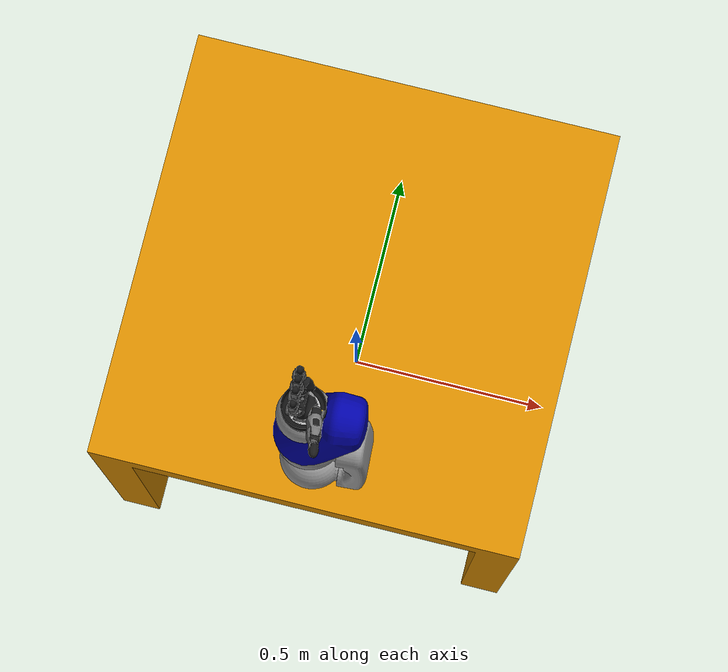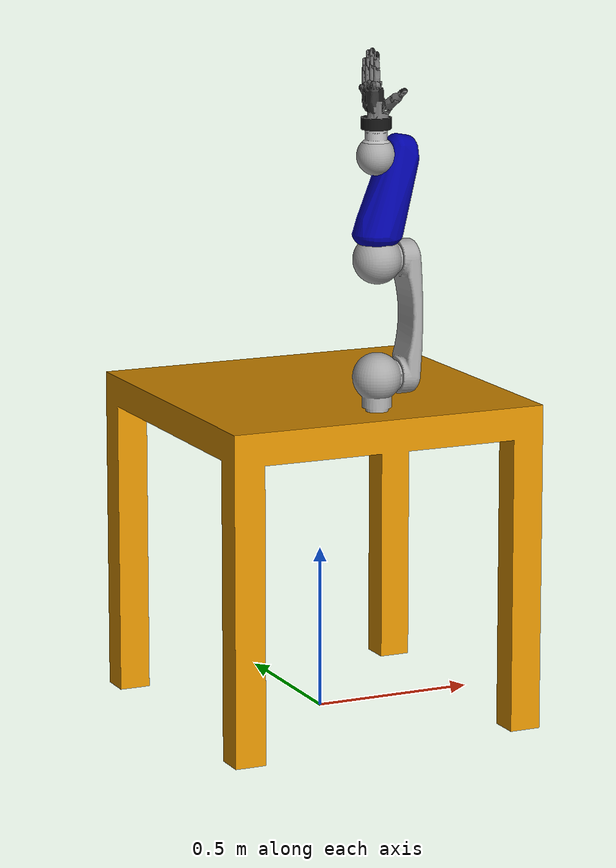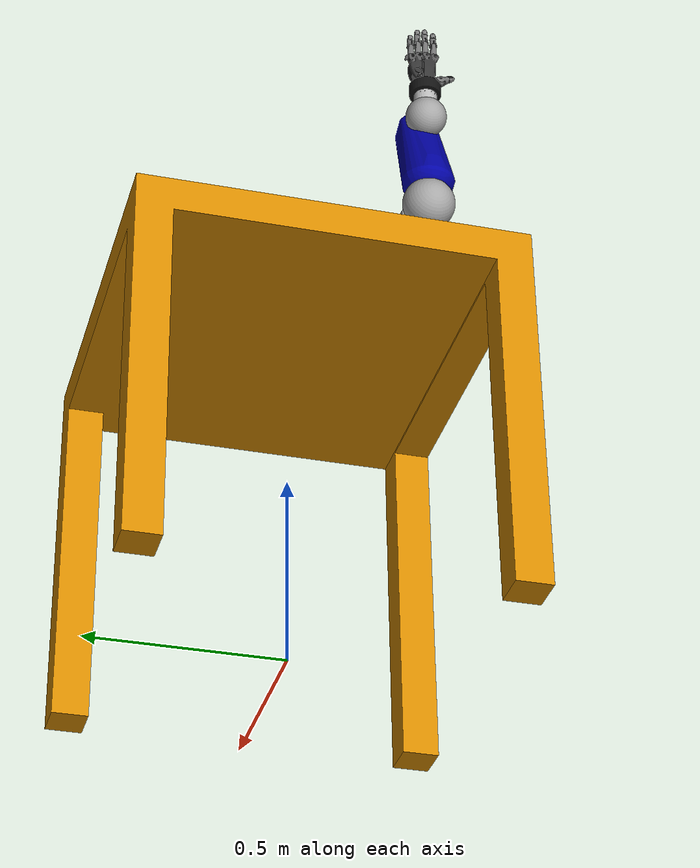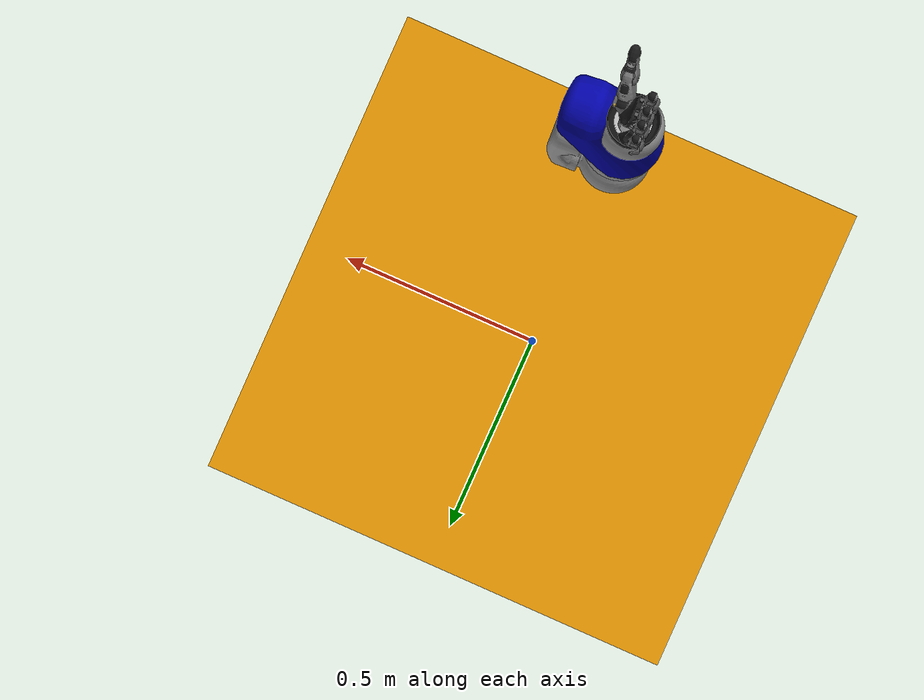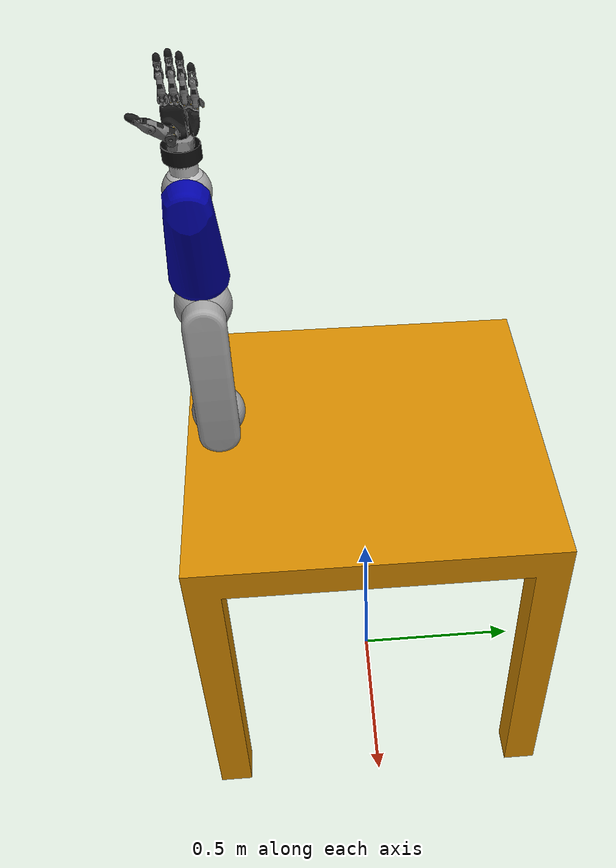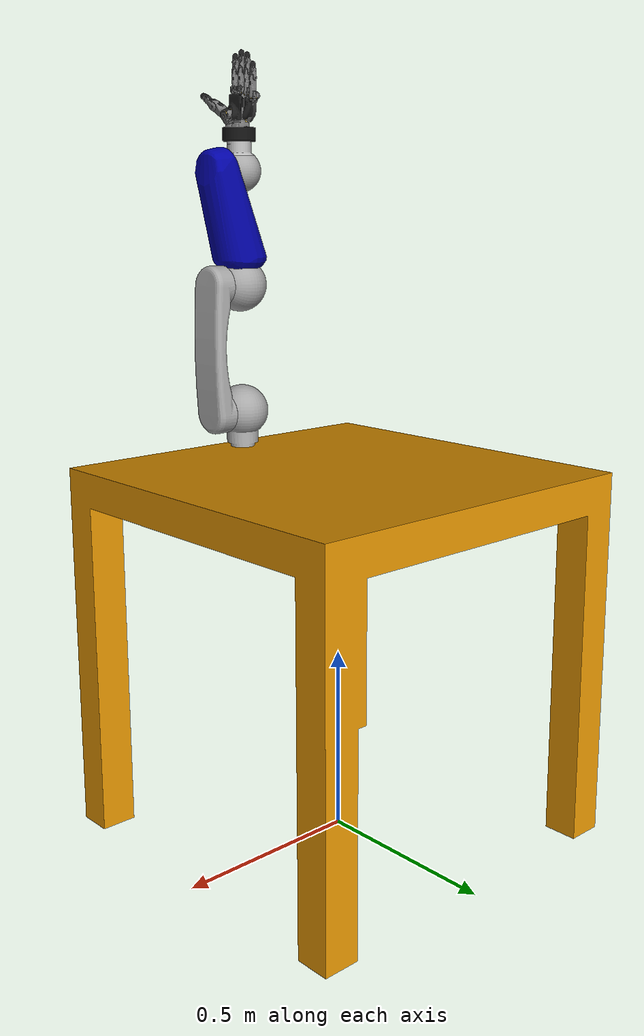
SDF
<?xml version="1.0" ?>
<sdf version="1.5">
	<model name="Arm robot">
		<link name="base_link">
			<pose>0.0 0.0 0.0 0.0 -0.0 0.0</pose>
			<inertial>
				<mass>1000.0</mass>
				<pose>0 0 0 0 0 0</pose>
				<inertia>
					<ixx>100.0</ixx>
					<ixy>0.0</ixy>
					<ixz>0.0</ixz>
					<iyy>100.0</iyy>
					<iyz>0.0</iyz>
					<izz>100.0</izz>
				</inertia>
			</inertial>
			<collision name="COL_base_link_collision">
				<pose>0.0 0.0 0.5 0.0 -0.0 0.0</pose>
				<geometry>
					<mesh>
						<uri>model://Arm_robot/meshes/collisions/COL_base_link_collision.dae</uri>
					</mesh>
				</geometry>
			</collision>
			<collision name="COL_base_link_collision_1">
				<pose>0.0 0.0 0.5 0.0 -0.0 0.0</pose>
				<geometry>
					<mesh>
						<uri>model://Arm_robot/meshes/collisions/COL_base_link_collision_1.dae</uri>
					</mesh>
				</geometry>
			</collision>
			<collision name="COL_base_link_collision_2">
				<pose>0.0 0.0 0.5 0.0 -0.0 0.0</pose>
				<geometry>
					<mesh>
						<uri>model://Arm_robot/meshes/collisions/COL_base_link_collision_2.dae</uri>
					</mesh>
				</geometry>
			</collision>
			<visual name="VIS_base_link_visual">
				<pose>0.0 0.0 0.5 0.0 -0.0 0.0</pose>
				<geometry>
					<mesh>
						<uri>model://Arm_robot/meshes/visual/VIS_base_link_visual.dae</uri>
					</mesh>
				</geometry>
			</visual>
		</link>
		<link name="hollie_real_left_arm">
			<pose>0.0 -0.40000000596 1.0 0.0 -0.0 1.623156189918518</pose>
			<inertial>
				<mass>0.29363998770713806</mass>
				<pose>0 0 0 0 0 0</pose>
				<inertia>
					<ixx>0.009999999776482582</ixx>
					<ixy>0.0</ixy>
					<ixz>0.0</ixz>
					<iyy>0.009999999776482582</iyy>
					<iyz>0.0</iyz>
					<izz>0.009999999776482582</izz>
				</inertia>
			</inertial>
		</link>
		<link name="hollie_real_000">
			<pose>3.46469219811e-18 -0.40000000596 1.1099999994 0.0 -0.0 1.623156189918518</pose>
			<inertial>
				<mass>0.29363998770713806</mass>
				<pose>0 0 0 0 0 0</pose>
				<inertia>
					<ixx>0.009999999776482582</ixx>
					<ixy>0.0</ixy>
					<ixz>0.0</ixz>
					<iyy>0.009999999776482582</iyy>
					<iyz>0.0</iyz>
					<izz>0.009999999776482582</izz>
				</inertia>
			</inertial>
			<collision name="COL_hollie_real.000_collision">
				<pose>3.502620060658046e-08 9.967757108597652e-08 1.3113021850585938e-06 0.0 -0.0 -1.2665987014770508e-07</pose>
				<geometry>
					<mesh>
						<uri>model://Arm_robot/meshes/collisions/COL_hollie_real_000_collision.dae</uri>
					</mesh>
				</geometry>
			</collision>
			<visual name="VIS_hollie_real.000_visual">
				<pose>3.502620060658046e-08 9.967757108597652e-08 1.3113021850585938e-06 -2.1012502315898018e-07 1.1580814529565941e-08 -1.2665987014770508e-07</pose>
				<geometry>
					<mesh>
						<uri>model://Arm_robot/meshes/visual/VIS_hollie_real_000_visual.dae</uri>
					</mesh>
				</geometry>
			</visual>
		</link>
		<link name="hollie_real_001">
			<pose>6.92938439622e-18 -0.40000000596 1.1099999994 1.5707963705062866 -0.0 1.623156189918518</pose>
			<inertial>
				<mass>1.683109998703003</mass>
				<pose>0 0 0 0 0 0</pose>
				<inertia>
					<ixx>0.029999999329447746</ixx>
					<ixy>0.0</ixy>
					<ixz>0.0</ixz>
					<iyy>0.029999999329447746</iyy>
					<iyz>0.0</iyz>
					<izz>0.029999999329447746</izz>
				</inertia>
			</inertial>
			<collision name="COL_hollie_real.001_collision">
				<pose>4.440184220300125e-09 1.5512088111790945e-06 -3.959155669974734e-09 -7.549789415861596e-08 -7.450580596923828e-08 -3.42975354783448e-08</pose>
				<geometry>
					<mesh>
						<uri>model://Arm_robot/meshes/collisions/COL_hollie_real_001_collision.dae</uri>
					</mesh>
				</geometry>
			</collision>
			<visual name="VIS_hollie_real.001_visual">
				<pose>4.440184220300125e-09 1.5512088111790945e-06 -3.959155669974734e-09 -7.549789415861596e-08 4.842877388000488e-08 5.42986633433884e-08</pose>
				<geometry>
					<mesh>
						<uri>model://Arm_robot/meshes/visual/VIS_hollie_real_001_visual.dae</uri>
					</mesh>
				</geometry>
			</visual>
		</link>
		<link name="hollie_real_002">
			<pose>-1.26858188779e-06 -0.400000072444 1.45999999344 1.5707961956607377 -8.742278039484667e-08 -1.5184365510940514</pose>
			<inertial>
				<mass>2.0999999046325684</mass>
				<pose>0 0 0 0 0 0</pose>
				<inertia>
					<ixx>0.029999999329447746</ixx>
					<ixy>0.0</ixy>
					<ixz>0.0</ixz>
					<iyy>0.029999999329447746</iyy>
					<iyz>0.0</iyz>
					<izz>0.029999999329447746</izz>
				</inertia>
			</inertial>
			<collision name="COL_hollie_real.002_collision">
				<pose>-1.6313825312863628e-07 9.193994401357486e-07 1.2008214866909839e-08 1.750278215695289e-07 -3.688037679694389e-07 3.710286122782236e-08</pose>
				<geometry>
					<mesh>
						<uri>model://Arm_robot/meshes/collisions/COL_hollie_real_002_collision.dae</uri>
					</mesh>
				</geometry>
			</collision>
			<visual name="VIS_hollie_real.002_visual">
				<pose>-1.6313825312863628e-07 9.193994401357486e-07 1.2008214866909839e-08 5.581852846603397e-08 5.885958671569824e-07 -1.7066166435597552e-07</pose>
				<geometry>
					<mesh>
						<uri>model://Arm_robot/meshes/visual/VIS_hollie_real_002_visual.dae</uri>
					</mesh>
				</geometry>
			</visual>
		</link>
		<link name="hollie_real_003">
			<pose>-1.26858188779e-06 -0.400000072444 1.45999999344 1.7484554892810745e-07 2.3841857949268303e-07 1.6231561024957617</pose>
			<inertial>
				<mass>1.683109998703003</mass>
				<pose>0 0 0 0 0 0</pose>
				<inertia>
					<ixx>0.10000000149011612</ixx>
					<ixy>0.0</ixy>
					<ixz>0.0</ixz>
					<iyy>0.10000000149011612</iyy>
					<iyz>0.0</iyz>
					<izz>0.10000000149011612</izz>
				</inertia>
			</inertial>
			<collision name="COL_hollie_real.003_collision">
				<pose>2.965595413684241e-08 -2.801496350457455e-07 -5.2729024702102834e-08 6.974032373818773e-08 3.080916854969473e-09 -4.0978225257504164e-08</pose>
				<geometry>
					<mesh>
						<uri>model://Arm_robot/meshes/collisions/COL_hollie_real_003_collision.dae</uri>
					</mesh>
				</geometry>
			</collision>
			<visual name="VIS_hollie_real.003_visual">
				<pose>2.965595413684241e-08 -2.801496350457455e-07 -5.2729024702102834e-08 2.2452533698924526e-07 6.1754015234782855e-09 -4.0978225257504164e-08</pose>
				<geometry>
					<mesh>
						<uri>model://Arm_robot/meshes/visual/VIS_hollie_real_003_visual.dae</uri>
					</mesh>
				</geometry>
			</visual>
		</link>
		<link name="hollie_real_004">
			<pose>-0.0052512203928 -0.400269976584 1.76500000151 1.5707961956607017 -2.384185530917369e-07 -1.5184364000982324</pose>
			<inertial>
				<mass>0.8069999814033508</mass>
				<pose>0 0 0 0 0 0</pose>
				<inertia>
					<ixx>0.029999999329447746</ixx>
					<ixy>0.0</ixy>
					<ixz>0.0</ixz>
					<iyy>0.029999999329447746</iyy>
					<iyz>0.0</iyz>
					<izz>0.029999999329447746</izz>
				</inertia>
			</inertial>
			<collision name="COL_hollie_real.004_collision">
				<pose>-1.6731675600567542e-07 6.537723038491094e-07 -6.429149834730197e-08 1.750278357803836e-07 -2.533197687171196e-07 9.097730568896623e-09</pose>
				<geometry>
					<mesh>
						<uri>model://Arm_robot/meshes/collisions/COL_hollie_real_004_collision.dae</uri>
					</mesh>
				</geometry>
			</collision>
			<visual name="VIS_hollie_real.004_visual">
				<pose>-1.6731675600567542e-07 6.537723038491094e-07 -6.429149834730197e-08 1.4863301203149604e-06 -1.7993152141571045e-06 -1.6434250937891193e-07</pose>
				<geometry>
					<mesh>
						<uri>model://Arm_robot/meshes/visual/VIS_hollie_real_004_visual.dae</uri>
					</mesh>
				</geometry>
			</visual>
		</link>
		<link name="hollie_real_005">
			<pose>-0.0052512203928 -0.400269976584 1.76500000151 -1.7484558489933022e-07 -2.384185530917369e-07 -1.5184364000982324</pose>
			<inertial>
				<mass>0.8190000057220459</mass>
				<pose>0 0 0 0 0 0</pose>
				<inertia>
					<ixx>0.009999999776482582</ixx>
					<ixy>0.0</ixy>
					<ixz>0.0</ixz>
					<iyy>0.009999999776482582</iyy>
					<iyz>0.0</iyz>
					<izz>0.009999999776482582</izz>
				</inertia>
			</inertial>
			<collision name="COL_hollie_real.005_collision">
				<pose>-6.61928254430677e-08 3.525356930822454e-07 1.4763578519705334e-06 2.4868999139735296e-14 -2.398082072003517e-14 -1.7508870087112882e-07</pose>
				<geometry>
					<mesh>
						<uri>model://Arm_robot/meshes/collisions/COL_hollie_real_005_collision.dae</uri>
					</mesh>
				</geometry>
			</collision>
			<visual name="VIS_hollie_real.005_visual">
				<pose>-6.61928254430677e-08 3.525356930822454e-07 1.4763578519705334e-06 1.2880501287781954e-07 -3.815348037505828e-11 4.2468306560294877e-07</pose>
				<geometry>
					<mesh>
						<uri>model://Arm_robot/meshes/visual/VIS_hollie_real_005_visual.dae</uri>
					</mesh>
				</geometry>
			</visual>
		</link>
		<link name="hollie_real_006">
			<pose>-0.00525120417999 -0.40026995186 1.865000003 -1.7484558489933022e-07 -2.384185530917369e-07 -1.5184364000982324</pose>
			<inertial>
				<mass>9.999999747378752e-06</mass>
				<pose>0 0 0 0 0 0</pose>
				<inertia>
					<ixx>0.009999999776482582</ixx>
					<ixy>0.0</ixy>
					<ixz>0.0</ixz>
					<iyy>0.009999999776482582</iyy>
					<iyz>0.0</iyz>
					<izz>0.009999999776482582</izz>
				</inertia>
			</inertial>
			<collision name="COL_hollie_real.006_collision">
				<pose>-1.6401645552832633e-07 9.84966504802287e-07 -0.03199799358844757 -3.375078333673655e-14 -8.437695664777548e-14 -1.7881400538044545e-07</pose>
				<geometry>
					<mesh>
						<uri>model://Arm_robot/meshes/collisions/COL_hollie_real_006_collision.dae</uri>
					</mesh>
				</geometry>
			</collision>
			<visual name="VIS_hollie_real.006_visual">
				<pose>-1.6401645552832633e-07 9.84966504802287e-07 -0.03199799358844757 -5.191037999452419e-08 -7.896225895365205e-10 6.33298924412884e-08</pose>
				<geometry>
					<mesh>
						<uri>model://Arm_robot/meshes/visual/VIS_hollie_real_006_visual.dae</uri>
					</mesh>
				</geometry>
			</visual>
		</link>
		<link name="hollie_real_007">
			<pose>-0.018361201363 -0.400959999037 1.8650000053 -1.7484558489933022e-07 -2.384185530917369e-07 -1.5184364000982324</pose>
			<inertial>
				<mass>9.999999747378752e-06</mass>
				<pose>0 0 0 0 0 0</pose>
				<inertia>
					<ixx>0.009999999776482582</ixx>
					<ixy>0.0</ixy>
					<ixz>0.0</ixz>
					<iyy>0.009999999776482582</iyy>
					<iyz>0.0</iyz>
					<izz>0.009999999776482582</izz>
				</inertia>
			</inertial>
			<collision name="COL_hollie_real.007_collision">
				<pose>-4.105544348931289e-08 0.01313019823282957 2.1919192931818543e-06 -8.8817850440342e-15 -5.595524721737147e-14 -1.7508870087112882e-07</pose>
				<geometry>
					<mesh>
						<uri>model://Arm_robot/meshes/collisions/COL_hollie_real_007_collision.dae</uri>
					</mesh>
				</geometry>
			</collision>
			<visual name="VIS_hollie_real.007_visual">
				<pose>-4.105544348931289e-08 0.01313019823282957 2.1919192931818543e-06 3.141590118408203 2.290735636734098e-07 -6.51925802230835e-07</pose>
				<geometry>
					<mesh>
						<uri>model://Arm_robot/meshes/visual/VIS_hollie_real_007_visual.dae</uri>
					</mesh>
				</geometry>
			</visual>
		</link>
		<link name="hollie_real_008">
			<pose>0.00873885416746 -0.416459901211 1.86500000474 -2.468290531170692e-07 0.2617995699299688 0.05235990652395092</pose>
			<inertial>
				<mass>9.999999747378752e-06</mass>
				<pose>0 0 0 0 0 0</pose>
				<inertia>
					<ixx>0.009999999776482582</ixx>
					<ixy>0.0</ixy>
					<ixz>0.0</ixz>
					<iyy>0.009999999776482582</iyy>
					<iyz>0.0</iyz>
					<izz>0.009999999776482582</izz>
				</inertia>
			</inertial>
			<collision name="COL_hollie_real.008_collision">
				<pose>2.0582228899002075e-07 -7.271654567375663e-07 0.024417871609330177 -7.1366548226592386e-09 8.899950643126431e-08 3.061263242898349e-08</pose>
				<geometry>
					<mesh>
						<uri>model://Arm_robot/meshes/collisions/COL_hollie_real_008_collision.dae</uri>
					</mesh>
				</geometry>
			</collision>
			<visual name="VIS_hollie_real.008_visual">
				<pose>2.0582228899002075e-07 -7.271654567375663e-07 0.024417871609330177 -2.559269887569826e-06 3.1415889263153076 -2.5472886591160204e-06</pose>
				<geometry>
					<mesh>
						<uri>model://Arm_robot/meshes/visual/VIS_hollie_real_008_visual.dae</uri>
					</mesh>
				</geometry>
			</visual>
		</link>
		<link name="hollie_real_left_hand_Thumb_Helper_link">
			<pose>0.020619278112 -0.415839868748 1.90938989184 3.1415915814163577 -1.3089966813669145 0.05236086019726231</pose>
			<inertial>
				<mass>9.999999747378752e-06</mass>
				<pose>0 0 0 0 0 0</pose>
				<inertia>
					<ixx>0.009999999776482582</ixx>
					<ixy>0.0</ixy>
					<ixz>0.0</ixz>
					<iyy>0.009999999776482582</iyy>
					<iyz>0.0</iyz>
					<izz>0.009999999776482582</izz>
				</inertia>
			</inertial>
		</link>
		<link name="hollie_real_009">
			<pose>0.020619278112 -0.415839868748 1.90938989184 -1.8834043242899619 -0.570602331441126 -1.3456024148070085</pose>
			<inertial>
				<mass>9.999999747378752e-06</mass>
				<pose>0 0 0 0 0 0</pose>
				<inertia>
					<ixx>0.009999999776482582</ixx>
					<ixy>0.0</ixy>
					<ixz>0.0</ixz>
					<iyy>0.009999999776482582</iyy>
					<iyz>0.0</iyz>
					<izz>0.009999999776482582</izz>
				</inertia>
			</inertial>
			<collision name="COL_hollie_real.009_collision">
				<pose>1.1101365089416504e-06 2.4423934519290924e-07 -2.905726432800293e-07 -7.63684582238966e-08 2.0116564769523393e-07 1.4901159772762185e-07</pose>
				<geometry>
					<mesh>
						<uri>model://Arm_robot/meshes/collisions/COL_hollie_real_009_collision.dae</uri>
					</mesh>
				</geometry>
			</collision>
			<visual name="VIS_hollie_real.009_visual">
				<pose>1.1101365089416504e-06 2.4423934519290924e-07 -2.905726432800293e-07 -3.141590118408203 3.539025499321724e-07 1.2889503295809845e-06</pose>
				<geometry>
					<mesh>
						<uri>model://Arm_robot/meshes/visual/VIS_hollie_real_009_visual.dae</uri>
					</mesh>
				</geometry>
			</visual>
		</link>
		<link name="hollie_real_010">
			<pose>0.0297291685108 -0.455619831516 1.93558998721 -1.8834043242899619 -0.570602331441126 -1.3456024148070085</pose>
			<inertial>
				<mass>9.999999747378752e-06</mass>
				<pose>0 0 0 0 0 0</pose>
				<inertia>
					<ixx>0.009999999776482582</ixx>
					<ixy>0.0</ixy>
					<ixz>0.0</ixz>
					<iyy>0.009999999776482582</iyy>
					<iyz>0.0</iyz>
					<izz>0.009999999776482582</izz>
				</inertia>
			</inertial>
			<collision name="COL_hollie_real.010_collision">
				<pose>-5.038455128669739e-07 -1.1296942830085754e-06 5.345791578292847e-07 -4.395843120619247e-07 1.4156103134155273e-07 -4.842877388000488e-08</pose>
				<geometry>
					<mesh>
						<uri>model://Arm_robot/meshes/collisions/COL_hollie_real_010_collision.dae</uri>
					</mesh>
				</geometry>
			</collision>
			<visual name="VIS_hollie_real.010_visual">
				<pose>-5.038455128669739e-07 -1.1296942830085754e-06 5.345791578292847e-07 3.141590118408203 -4.0978189730367376e-08 1.8626449218572816e-06</pose>
				<geometry>
					<mesh>
						<uri>model://Arm_robot/meshes/visual/VIS_hollie_real_010_visual.dae</uri>
					</mesh>
				</geometry>
			</visual>
		</link>
		<link name="hollie_real_011">
			<pose>0.0353691007785 -0.480229808961 1.95179004648 -1.8834043242899619 -0.570602331441126 -1.3456024148070085</pose>
			<inertial>
				<mass>9.999999747378752e-06</mass>
				<pose>0 0 0 0 0 0</pose>
				<inertia>
					<ixx>0.009999999776482582</ixx>
					<ixy>0.0</ixy>
					<ixz>0.0</ixz>
					<iyy>0.009999999776482582</iyy>
					<iyz>0.0</iyz>
					<izz>0.009999999776482582</izz>
				</inertia>
			</inertial>
			<collision name="COL_hollie_real.011_collision">
				<pose>-5.820766091346741e-08 -1.7229467630386353e-07 -3.3527612686157227e-08 -6.407499313354492e-07 2.868473814032768e-07 -1.8998983364326705e-07</pose>
				<geometry>
					<mesh>
						<uri>model://Arm_robot/meshes/collisions/COL_hollie_real_011_collision.dae</uri>
					</mesh>
				</geometry>
			</collision>
			<visual name="VIS_hollie_real.011_visual">
				<pose>-5.820766091346741e-08 -1.7229467630386353e-07 -3.3527612686157227e-08 3.141590118408203 3.874302478834579e-07 1.7769636997400085e-06</pose>
				<geometry>
					<mesh>
						<uri>model://Arm_robot/meshes/visual/VIS_hollie_real_011_visual.dae</uri>
					</mesh>
				</geometry>
			</visual>
		</link>
		<link name="hollie_real_left_hand_f1_link">
			<pose>-0.018361201363 -0.400959999037 1.8650000053 -1.7484558489933022e-07 -2.384185530917369e-07 -1.5184364000982324</pose>
			<inertial>
				<mass>9.999999747378752e-06</mass>
				<pose>0 0 0 0 0 0</pose>
				<inertia>
					<ixx>0.009999999776482582</ixx>
					<ixy>0.0</ixy>
					<ixz>0.0</ixz>
					<iyy>0.009999999776482582</iyy>
					<iyz>0.0</iyz>
					<izz>0.009999999776482582</izz>
				</inertia>
			</inertial>
		</link>
		<link name="hollie_real_left_hand_f2_link">
			<pose>-0.018361201363 -0.400959999037 1.8650000053 -1.7484558489933022e-07 -2.384185530917369e-07 -1.5184364000982324</pose>
			<inertial>
				<mass>9.999999747378752e-06</mass>
				<pose>0 0 0 0 0 0</pose>
				<inertia>
					<ixx>0.009999999776482582</ixx>
					<ixy>0.0</ixy>
					<ixz>0.0</ixz>
					<iyy>0.009999999776482582</iyy>
					<iyz>0.0</iyz>
					<izz>0.009999999776482582</izz>
				</inertia>
			</inertial>
		</link>
		<link name="hollie_real_left_hand_f3_link">
			<pose>-0.018361201363 -0.400959999037 1.8650000053 -1.7484558489933022e-07 -2.384185530917369e-07 -1.5184364000982324</pose>
			<inertial>
				<mass>9.999999747378752e-06</mass>
				<pose>0 0 0 0 0 0</pose>
				<inertia>
					<ixx>0.009999999776482582</ixx>
					<ixy>0.0</ixy>
					<ixz>0.0</ixz>
					<iyy>0.009999999776482582</iyy>
					<iyz>0.0</iyz>
					<izz>0.009999999776482582</izz>
				</inertia>
			</inertial>
		</link>
		<link name="hollie_real_012">
			<pose>-0.017051093699 -0.425919966674 1.97500001066 -0.7501074984185336 -1.5707960878092948 0.8024674688265603</pose>
			<inertial>
				<mass>9.999999747378752e-06</mass>
				<pose>0 0 0 0 0 0</pose>
				<inertia>
					<ixx>0.009999999776482582</ixx>
					<ixy>0.0</ixy>
					<ixz>0.0</ixz>
					<iyy>0.009999999776482582</iyy>
					<iyz>0.0</iyz>
					<izz>0.009999999776482582</izz>
				</inertia>
			</inertial>
			<collision name="COL_hollie_real.012_collision">
				<pose>1.820733217527959e-07 -2.5844545348263637e-07 0.013210196048021317 3.352760913344355e-08 5.101668776319457e-08 -1.8900411191680178e-07</pose>
				<geometry>
					<mesh>
						<uri>model://Arm_robot/meshes/collisions/COL_hollie_real_012_collision.dae</uri>
					</mesh>
				</geometry>
			</collision>
			<visual name="VIS_hollie_real.012_visual">
				<pose>1.820733217527959e-07 -2.5844545348263637e-07 0.013210196048021317 4.470348002882929e-08 4.081545057488256e-07 -2.0772087339082645e-07</pose>
				<geometry>
					<mesh>
						<uri>model://Arm_robot/meshes/visual/VIS_hollie_real_012_visual.dae</uri>
					</mesh>
				</geometry>
			</visual>
		</link>
		<link name="hollie_real_013">
			<pose>-0.017051093699 -0.425919966674 1.97500001066 -2.3209038689248205 -1.5707960878092948 0.8024674688265603</pose>
			<inertial>
				<mass>9.999999747378752e-06</mass>
				<pose>0 0 0 0 0 0</pose>
				<inertia>
					<ixx>0.009999999776482582</ixx>
					<ixy>0.0</ixy>
					<ixz>0.0</ixz>
					<iyy>0.009999999776482582</iyy>
					<iyz>0.0</iyz>
					<izz>0.009999999776482582</izz>
				</inertia>
			</inertial>
			<collision name="COL_hollie_real.013_collision">
				<pose>-4.3098827973153675e-07 -1.2665623216889799e-08 1.0136992045772786e-07 -1.1548395661975519e-07 2.1880642009364237e-07 -4.397820774215688e-08</pose>
				<geometry>
					<mesh>
						<uri>model://Arm_robot/meshes/collisions/COL_hollie_real_013_collision.dae</uri>
					</mesh>
				</geometry>
			</collision>
			<visual name="VIS_hollie_real.013_visual">
				<pose>-4.3098827973153675e-07 -1.2665623216889799e-08 1.0136992045772786e-07 -2.9765069484710693e-06 2.1256749960230081e-07 -1.630241257544185e-07</pose>
				<geometry>
					<mesh>
						<uri>model://Arm_robot/meshes/visual/VIS_hollie_real_013_visual.dae</uri>
					</mesh>
				</geometry>
			</visual>
		</link>
		<link name="hollie_real_014">
			<pose>-0.0170509615857 -0.425920235852 2.02304000952 -2.3209038689248205 -1.5707960878092948 0.8024674688265603</pose>
			<inertial>
				<mass>9.999999747378752e-06</mass>
				<pose>0 0 0 0 0 0</pose>
				<inertia>
					<ixx>0.009999999776482582</ixx>
					<ixy>0.0</ixy>
					<ixz>0.0</ixz>
					<iyy>0.009999999776482582</iyy>
					<iyz>0.0</iyz>
					<izz>0.009999999776482582</izz>
				</inertia>
			</inertial>
			<collision name="COL_hollie_real.014_collision">
				<pose>1.6505802591382235e-07 -4.227253498356731e-07 -1.2170801255706465e-08 -6.705518273975031e-08 2.1880640588278766e-07 -4.39782219530116e-08</pose>
				<geometry>
					<mesh>
						<uri>model://Arm_robot/meshes/collisions/COL_hollie_real_014_collision.dae</uri>
					</mesh>
				</geometry>
			</collision>
			<visual name="VIS_hollie_real.014_visual">
				<pose>1.6505802591382235e-07 -4.227253498356731e-07 -1.2170801255706465e-08 -2.8051435947418213e-06 2.1256749960230081e-07 -1.630241399652732e-07</pose>
				<geometry>
					<mesh>
						<uri>model://Arm_robot/meshes/visual/VIS_hollie_real_014_visual.dae</uri>
					</mesh>
				</geometry>
			</visual>
		</link>
		<link name="hollie_real_015">
			<pose>-0.0170508900839 -0.425920381536 2.04904001006 -2.3209038689248205 -1.5707960878092948 0.8024674688265603</pose>
			<inertial>
				<mass>9.999999747378752e-06</mass>
				<pose>0 0 0 0 0 0</pose>
				<inertia>
					<ixx>0.009999999776482582</ixx>
					<ixy>0.0</ixy>
					<ixz>0.0</ixz>
					<iyy>0.009999999776482582</iyy>
					<iyz>0.0</iyz>
					<izz>0.009999999776482582</izz>
				</inertia>
			</inertial>
			<collision name="COL_hollie_real.015_collision">
				<pose>-3.117791038675932e-07 4.232504124956904e-08 -4.3108894942633924e-07 -7.078046593278486e-08 2.1880637746107823e-07 -4.3978232611152634e-08</pose>
				<geometry>
					<mesh>
						<uri>model://Arm_robot/meshes/collisions/COL_hollie_real_015_collision.dae</uri>
					</mesh>
				</geometry>
			</collision>
			<visual name="VIS_hollie_real.015_visual">
				<pose>-3.117791038675932e-07 4.232504124956904e-08 -4.3108894942633924e-07 -2.5704500785650453e-06 2.250452979524198e-07 7.506766763754058e-08</pose>
				<geometry>
					<mesh>
						<uri>model://Arm_robot/meshes/visual/VIS_hollie_real_015_visual.dae</uri>
					</mesh>
				</geometry>
			</visual>
		</link>
		<link name="hollie_real_016">
			<pose>-0.0183611835289 -0.40095997184 1.9750000047 -0.7501074984185336 -1.5707960878092948 0.8024674688265603</pose>
			<inertial>
				<mass>9.999999747378752e-06</mass>
				<pose>0 0 0 0 0 0</pose>
				<inertia>
					<ixx>0.009999999776482582</ixx>
					<ixy>0.0</ixy>
					<ixz>0.0</ixz>
					<iyy>0.009999999776482582</iyy>
					<iyz>0.0</iyz>
					<izz>0.009999999776482582</izz>
				</inertia>
			</inertial>
			<collision name="COL_hollie_real.016_collision">
				<pose>-1.773834270579755e-07 -1.0730068424891215e-06 0.013210099190473557 7.450581485102248e-09 4.3566096508129704e-08 -1.2939946714141115e-07</pose>
				<geometry>
					<mesh>
						<uri>model://Arm_robot/meshes/collisions/COL_hollie_real_016_collision.dae</uri>
					</mesh>
				</geometry>
			</collision>
			<visual name="VIS_hollie_real.016_visual">
				<pose>-1.773834270579755e-07 -1.0730068424891215e-06 0.013210099190473557 1.1548399214689198e-07 4.007038683084829e-07 -1.4811625703714526e-07</pose>
				<geometry>
					<mesh>
						<uri>model://Arm_robot/meshes/visual/VIS_hollie_real_016_visual.dae</uri>
					</mesh>
				</geometry>
			</visual>
		</link>
		<link name="hollie_real_017">
			<pose>-0.0183611835289 -0.40095997184 1.9750000047 -2.3209038689248205 -1.5707960878092948 0.8024674688265603</pose>
			<inertial>
				<mass>9.999999747378752e-06</mass>
				<pose>0 0 0 0 0 0</pose>
				<inertia>
					<ixx>0.009999999776482582</ixx>
					<ixy>0.0</ixy>
					<ixz>0.0</ixz>
					<iyy>0.009999999776482582</iyy>
					<iyz>0.0</iyz>
					<izz>0.009999999776482582</izz>
				</inertia>
			</inertial>
			<collision name="COL_hollie_real.017_collision">
				<pose>-7.093109388733865e-08 1.1585674997149908e-07 -7.596530622322462e-07 -5.587929763350985e-08 1.654406815987386e-07 7.506769605925001e-08</pose>
				<geometry>
					<mesh>
						<uri>model://Arm_robot/meshes/collisions/COL_hollie_real_017_collision.dae</uri>
					</mesh>
				</geometry>
			</collision>
			<visual name="VIS_hollie_real.017_visual">
				<pose>-7.093109388733865e-08 1.1585674997149908e-07 -7.596530622322462e-07 4.2095786056961515e-07 1.654406815987386e-07 7.506769605925001e-08</pose>
				<geometry>
					<mesh>
						<uri>model://Arm_robot/meshes/visual/VIS_hollie_real_017_visual.dae</uri>
					</mesh>
				</geometry>
			</visual>
		</link>
		<link name="hollie_real_018">
			<pose>-0.0183610459154 -0.400960252225 2.02504000389 -2.3209038689248205 -1.5707960878092948 0.8024674688265603</pose>
			<inertial>
				<mass>9.999999747378752e-06</mass>
				<pose>0 0 0 0 0 0</pose>
				<inertia>
					<ixx>0.009999999776482582</ixx>
					<ixy>0.0</ixy>
					<ixz>0.0</ixz>
					<iyy>0.009999999776482582</iyy>
					<iyz>0.0</iyz>
					<izz>0.009999999776482582</izz>
				</inertia>
			</inertial>
			<collision name="COL_hollie_real.018_collision">
				<pose>-1.501442397966457e-06 6.291925274126697e-07 -5.03334149470902e-07 -6.332989954671575e-08 1.5920174689654232e-07 -4.39782219530116e-08</pose>
				<geometry>
					<mesh>
						<uri>model://Arm_robot/meshes/collisions/COL_hollie_real_018_collision.dae</uri>
					</mesh>
				</geometry>
			</collision>
			<visual name="VIS_hollie_real.018_visual">
				<pose>-1.501442397966457e-06 6.291925274126697e-07 -5.03334149470902e-07 5.960467319710006e-08 1.5920174689654232e-07 -4.39782219530116e-08</pose>
				<geometry>
					<mesh>
						<uri>model://Arm_robot/meshes/visual/VIS_hollie_real_018_visual.dae</uri>
					</mesh>
				</geometry>
			</visual>
		</link>
		<link name="hollie_real_019">
			<pose>-0.0183609579132 -0.400960431528 2.05704000541 -2.3209038689248205 -1.5707960878092948 0.8024674688265603</pose>
			<inertial>
				<mass>9.999999747378752e-06</mass>
				<pose>0 0 0 0 0 0</pose>
				<inertia>
					<ixx>0.009999999776482582</ixx>
					<ixy>0.0</ixy>
					<ixz>0.0</ixz>
					<iyy>0.009999999776482582</iyy>
					<iyz>0.0</iyz>
					<izz>0.009999999776482582</izz>
				</inertia>
			</inertial>
			<collision name="COL_hollie_real.019_collision">
				<pose>-7.093117204703958e-08 -1.0300618669134565e-07 -8.32249440918531e-07 -6.332989954671575e-08 1.5920176110739703e-07 -4.397822550572528e-08</pose>
				<geometry>
					<mesh>
						<uri>model://Arm_robot/meshes/collisions/COL_hollie_real_019_collision.dae</uri>
					</mesh>
				</geometry>
			</collision>
			<visual name="VIS_hollie_real.019_visual">
				<pose>-7.093117204703958e-08 -1.0300618669134565e-07 -8.32249440918531e-07 -5.401670932769775e-07 1.529628548269102e-07 -1.630241399652732e-07</pose>
				<geometry>
					<mesh>
						<uri>model://Arm_robot/meshes/visual/VIS_hollie_real_019_visual.dae</uri>
					</mesh>
				</geometry>
			</visual>
		</link>
		<link name="hollie_real_020">
			<pose>-0.0133312627298 -0.38226997201 1.90250000135 -1.7484558489933022e-07 -2.384185530917369e-07 -1.5184364000982324</pose>
			<inertial>
				<mass>9.999999747378752e-06</mass>
				<pose>0 0 0 0 0 0</pose>
				<inertia>
					<ixx>0.009999999776482582</ixx>
					<ixy>0.0</ixy>
					<ixz>0.0</ixz>
					<iyy>0.009999999776482582</iyy>
					<iyz>0.0</iyz>
					<izz>0.009999999776482582</izz>
				</inertia>
			</inertial>
			<collision name="COL_hollie_real.020_collision">
				<pose>0.0006995591102167964 1.979294381726504e-07 -0.010019254870712757 -8.8817850440342e-15 -5.595524721737147e-14 -1.7881400538044545e-07</pose>
				<geometry>
					<mesh>
						<uri>model://Arm_robot/meshes/collisions/COL_hollie_real_020_collision.dae</uri>
					</mesh>
				</geometry>
			</collision>
			<visual name="VIS_hollie_real.020_visual">
				<pose>0.0006995591102167964 1.979294381726504e-07 -0.010019254870712757 3.141590118408203 -2.3037616259102833e-08 -4.1723257027115324e-07</pose>
				<geometry>
					<mesh>
						<uri>model://Arm_robot/meshes/visual/VIS_hollie_real_020_visual.dae</uri>
					</mesh>
				</geometry>
			</visual>
		</link>
		<link name="hollie_real_left_hand_f5_link">
			<pose>-0.019331261753 -0.382579993617 1.9025000024 -1.7484558489933022e-07 -2.384185530917369e-07 -1.5184364000982324</pose>
			<inertial>
				<mass>9.999999747378752e-06</mass>
				<pose>0 0 0 0 0 0</pose>
				<inertia>
					<ixx>0.009999999776482582</ixx>
					<ixy>0.0</ixy>
					<ixz>0.0</ixz>
					<iyy>0.009999999776482582</iyy>
					<iyz>0.0</iyz>
					<izz>0.009999999776482582</izz>
				</inertia>
			</inertial>
		</link>
		<link name="hollie_real_left_hand_f6_link">
			<pose>-0.019331261753 -0.382579993617 1.9025000024 -1.7484558489933022e-07 -2.384185530917369e-07 -1.5184364000982324</pose>
			<inertial>
				<mass>9.999999747378752e-06</mass>
				<pose>0 0 0 0 0 0</pose>
				<inertia>
					<ixx>0.009999999776482582</ixx>
					<ixy>0.0</ixy>
					<ixz>0.0</ixz>
					<iyy>0.009999999776482582</iyy>
					<iyz>0.0</iyz>
					<izz>0.009999999776482582</izz>
				</inertia>
			</inertial>
		</link>
		<link name="hollie_real_left_hand_f7_link">
			<pose>-0.019331261753 -0.382579993617 1.9025000024 -1.7484558489933022e-07 -2.384185530917369e-07 -1.5184364000982324</pose>
			<inertial>
				<mass>9.999999747378752e-06</mass>
				<pose>0 0 0 0 0 0</pose>
				<inertia>
					<ixx>0.009999999776482582</ixx>
					<ixy>0.0</ixy>
					<ixz>0.0</ixz>
					<iyy>0.009999999776482582</iyy>
					<iyz>0.0</iyz>
					<izz>0.009999999776482582</izz>
				</inertia>
			</inertial>
		</link>
		<link name="hollie_real_021">
			<pose>-0.0206513438344 -0.357259984317 1.95849999808 2.3914850677484796 -1.5707960878092948 0.8024674688265603</pose>
			<inertial>
				<mass>9.999999747378752e-06</mass>
				<pose>0 0 0 0 0 0</pose>
				<inertia>
					<ixx>0.009999999776482582</ixx>
					<ixy>0.0</ixy>
					<ixz>0.0</ixz>
					<iyy>0.009999999776482582</iyy>
					<iyz>0.0</iyz>
					<izz>0.009999999776482582</izz>
				</inertia>
			</inertial>
			<collision name="COL_hollie_real.021_collision">
				<pose>-7.810164106558659e-07 -1.712164362288604e-06 -0.013210095465183258 -0.09847992658615112 -8.888411571206234e-07 1.7572572232893435e-06</pose>
				<geometry>
					<mesh>
						<uri>model://Arm_robot/meshes/collisions/COL_hollie_real_021_collision.dae</uri>
					</mesh>
				</geometry>
			</collision>
			<visual name="VIS_hollie_real.021_visual">
				<pose>-7.810164106558659e-07 -1.712164362288604e-06 -0.013210095465183258 0.48761188983917236 -5.156666702532675e-07 -1.785832296263834e-06</pose>
				<geometry>
					<mesh>
						<uri>model://Arm_robot/meshes/visual/VIS_hollie_real_021_visual.dae</uri>
					</mesh>
				</geometry>
			</visual>
		</link>
		<link name="hollie_real_022">
			<pose>-0.0206513438344 -0.357259984317 1.95849999808 -2.3209038689248205 -1.5707960878092948 0.8024674688265603</pose>
			<inertial>
				<mass>9.999999747378752e-06</mass>
				<pose>0 0 0 0 0 0</pose>
				<inertia>
					<ixx>0.009999999776482582</ixx>
					<ixy>0.0</ixy>
					<ixz>0.0</ixz>
					<iyy>0.009999999776482582</iyy>
					<iyz>0.0</iyz>
					<izz>0.009999999776482582</izz>
				</inertia>
			</inertial>
			<collision name="COL_hollie_real.022_collision">
				<pose>6.473467806245026e-07 3.88592468425486e-07 1.542613006222382e-07 -1.1548391398719104e-07 2.1638309988247784e-07 -4.430493305562777e-08</pose>
				<geometry>
					<mesh>
						<uri>model://Arm_robot/meshes/collisions/COL_hollie_real_022_collision.dae</uri>
					</mesh>
				</geometry>
			</collision>
			<visual name="VIS_hollie_real.022_visual">
				<pose>6.473467806245026e-07 3.88592468425486e-07 1.542613006222382e-07 1.2665992699112394e-07 2.1014417939113628e-07 -1.633508475151757e-07</pose>
				<geometry>
					<mesh>
						<uri>model://Arm_robot/meshes/visual/VIS_hollie_real_022_visual.dae</uri>
					</mesh>
				</geometry>
			</visual>
		</link>
		<link name="hollie_real_023">
			<pose>-0.0206512213463 -0.357260233884 2.0030399973 -2.3209038689248205 -1.5707960878092948 0.8024674688265603</pose>
			<inertial>
				<mass>9.999999747378752e-06</mass>
				<pose>0 0 0 0 0 0</pose>
				<inertia>
					<ixx>0.009999999776482582</ixx>
					<ixy>0.0</ixy>
					<ixz>0.0</ixz>
					<iyy>0.009999999776482582</iyy>
					<iyz>0.0</iyz>
					<izz>0.009999999776482582</izz>
				</inertia>
			</inertial>
			<collision name="COL_hollie_real.023_collision">
				<pose>-1.4984202607593033e-06 6.877301075292053e-07 1.5127184838092944e-07 -1.1920920428565296e-07 2.1638308567162312e-07 -4.430493305562777e-08</pose>
				<geometry>
					<mesh>
						<uri>model://Arm_robot/meshes/collisions/COL_hollie_real_023_collision.dae</uri>
					</mesh>
				</geometry>
			</collision>
			<visual name="VIS_hollie_real.023_visual">
				<pose>-1.4984202607593033e-06 6.877301075292053e-07 1.5127184838092944e-07 -3.576277265437966e-07 2.2262199195210997e-07 7.474096008763809e-08</pose>
				<geometry>
					<mesh>
						<uri>model://Arm_robot/meshes/visual/VIS_hollie_real_023_visual.dae</uri>
					</mesh>
				</geometry>
			</visual>
		</link>
		<link name="hollie_real_024">
			<pose>-0.0206511608448 -0.357260357155 2.02503999718 -2.3209038689248205 -1.5707960878092948 0.8024674688265603</pose>
			<inertial>
				<mass>9.999999747378752e-06</mass>
				<pose>0 0 0 0 0 0</pose>
				<inertia>
					<ixx>0.009999999776482582</ixx>
					<ixy>0.0</ixy>
					<ixz>0.0</ixz>
					<iyy>0.009999999776482582</iyy>
					<iyz>0.0</iyz>
					<izz>0.009999999776482582</izz>
				</inertia>
			</inertial>
			<collision name="COL_hollie_real.024_collision">
				<pose>-3.0632790526397e-07 -5.707330501536489e-07 4.811482199329475e-07 -1.266597848825768e-07 2.1638308567162312e-07 -4.430493305562777e-08</pose>
				<geometry>
					<mesh>
						<uri>model://Arm_robot/meshes/collisions/COL_hollie_real_024_collision.dae</uri>
					</mesh>
				</geometry>
			</collision>
			<visual name="VIS_hollie_real.024_visual">
				<pose>-3.0632790526397e-07 -5.707330501536489e-07 4.811482199329475e-07 -2.4586910285506747e-07 2.0390524468894e-07 -2.82396769080151e-07</pose>
				<geometry>
					<mesh>
						<uri>model://Arm_robot/meshes/visual/VIS_hollie_real_024_visual.dae</uri>
					</mesh>
				</geometry>
			</visual>
		</link>
		<link name="hollie_real_left_hand_f8_link">
			<pose>-0.019331261753 -0.382579993617 1.9025000024 -1.7484558489933022e-07 -2.384185530917369e-07 -1.5184364000982324</pose>
			<inertial>
				<mass>9.999999747378752e-06</mass>
				<pose>0 0 0 0 0 0</pose>
				<inertia>
					<ixx>0.009999999776482582</ixx>
					<ixy>0.0</ixy>
					<ixz>0.0</ixz>
					<iyy>0.009999999776482582</iyy>
					<iyz>0.0</iyz>
					<izz>0.009999999776482582</izz>
				</inertia>
			</inertial>
		</link>
		<link name="hollie_real_025">
			<pose>-0.0195312649949 -0.378729978111 1.96800000011 2.3914850677484796 -1.5707960878092948 0.8024674688265603</pose>
			<inertial>
				<mass>9.999999747378752e-06</mass>
				<pose>0 0 0 0 0 0</pose>
				<inertia>
					<ixx>0.009999999776482582</ixx>
					<ixy>0.0</ixy>
					<ixz>0.0</ixz>
					<iyy>0.009999999776482582</iyy>
					<iyz>0.0</iyz>
					<izz>0.009999999776482582</izz>
				</inertia>
			</inertial>
			<collision name="COL_hollie_real.025_collision">
				<pose>-1.8887023145452986e-07 -5.999492032060516e-07 -0.013209988363087177 -5.5879372240497105e-08 -1.2950026757607702e-06 2.7011009251509677e-07</pose>
				<geometry>
					<mesh>
						<uri>model://Arm_robot/meshes/collisions/COL_hollie_real_025_collision.dae</uri>
					</mesh>
				</geometry>
			</collision>
			<visual name="VIS_hollie_real.025_visual">
				<pose>-1.8887023145452986e-07 -5.999492032060516e-07 -0.013209988363087177 0.22647900879383087 -1.2950026757607702e-06 2.7011009251509677e-07</pose>
				<geometry>
					<mesh>
						<uri>model://Arm_robot/meshes/visual/VIS_hollie_real_025_visual.dae</uri>
					</mesh>
				</geometry>
			</visual>
		</link>
		<link name="hollie_real_026">
			<pose>-0.0195312649949 -0.378729978111 1.96800000011 -2.3209038689248205 -1.5707960878092948 0.8024674688265603</pose>
			<inertial>
				<mass>9.999999747378752e-06</mass>
				<pose>0 0 0 0 0 0</pose>
				<inertia>
					<ixx>0.009999999776482582</ixx>
					<ixy>0.0</ixy>
					<ixz>0.0</ixz>
					<iyy>0.009999999776482582</iyy>
					<iyz>0.0</iyz>
					<izz>0.009999999776482582</izz>
				</inertia>
			</inertial>
			<collision name="COL_hollie_real.026_collision">
				<pose>-5.47861645827652e-07 4.920964897792146e-07 -7.250807243508461e-07 -2.421437557131867e-07 2.3128421844376135e-07 -4.4304922397486735e-08</pose>
				<geometry>
					<mesh>
						<uri>model://Arm_robot/meshes/collisions/COL_hollie_real_026_collision.dae</uri>
					</mesh>
				</geometry>
			</collision>
			<visual name="VIS_hollie_real.026_visual">
				<pose>-5.47861645827652e-07 4.920964897792146e-07 -7.250807243508461e-07 -0.05260705575346947 2.1880640588278766e-07 -2.82396769080151e-07</pose>
				<geometry>
					<mesh>
						<uri>model://Arm_robot/meshes/visual/VIS_hollie_real_026_visual.dae</uri>
					</mesh>
				</geometry>
			</visual>
		</link>
		<link name="hollie_real_027">
			<pose>-0.0195311273814 -0.378730258496 2.0180399993 -2.3209038689248205 -1.5707960878092948 0.8024674688265603</pose>
			<inertial>
				<mass>9.999999747378752e-06</mass>
				<pose>0 0 0 0 0 0</pose>
				<inertia>
					<ixx>0.009999999776482582</ixx>
					<ixy>0.0</ixy>
					<ixz>0.0</ixz>
					<iyy>0.009999999776482582</iyy>
					<iyz>0.0</iyz>
					<izz>0.009999999776482582</izz>
				</inertia>
			</inertial>
			<collision name="COL_hollie_real.027_collision">
				<pose>-7.102472210362976e-08 2.120043518516468e-08 -5.608406468127214e-07 -1.1920921849650767e-07 2.3128424686547078e-07 -4.430501832075606e-08</pose>
				<geometry>
					<mesh>
						<uri>model://Arm_robot/meshes/collisions/COL_hollie_real_027_collision.dae</uri>
					</mesh>
				</geometry>
			</collision>
			<visual name="VIS_hollie_real.027_visual">
				<pose>-7.102472210362976e-08 2.120043518516468e-08 -5.608406468127214e-07 -3.5762778338721546e-07 2.3752316735681234e-07 7.474093166592866e-08</pose>
				<geometry>
					<mesh>
						<uri>model://Arm_robot/meshes/visual/VIS_hollie_real_027_visual.dae</uri>
					</mesh>
				</geometry>
			</visual>
		</link>
		<link name="hollie_real_lef">
			<pose>-0.0195310393792 -0.378730437799 2.05004000082 -2.3209038689248205 -1.5707960878092948 0.8024674688265603</pose>
			<inertial>
				<mass>9.999999747378752e-06</mass>
				<pose>0 0 0 0 0 0</pose>
				<inertia>
					<ixx>0.009999999776482582</ixx>
					<ixy>0.0</ixy>
					<ixz>0.0</ixz>
					<iyy>0.009999999776482582</iyy>
					<iyz>0.0</iyz>
					<izz>0.009999999776482582</izz>
				</inertia>
			</inertial>
			<collision name="COL_hollie_real_lef_collision">
				<pose>8.826496014080476e-07 -1.0768030733743217e-07 -2.0978791326342616e-07 -1.229345087949696e-07 2.3128423265461606e-07 -4.430501832075606e-08</pose>
				<geometry>
					<mesh>
						<uri>model://Arm_robot/meshes/collisions/COL_hollie_real_lef_collision.dae</uri>
					</mesh>
				</geometry>
			</collision>
			<visual name="VIS_hollie_real_lef_visual">
				<pose>8.826496014080476e-07 -1.0768030733743217e-07 -2.0978791326342616e-07 0.02001773566007614 2.1880639167193294e-07 -2.823968543452793e-07</pose>
				<geometry>
					<mesh>
						<uri>model://Arm_robot/meshes/visual/VIS_hollie_real_lef_visual.dae</uri>
					</mesh>
				</geometry>
			</visual>
		</link>
		<joint name="hollie_real_left_arm" type="prismatic">
			<parent>base_link</parent>
			<child>hollie_real_left_arm</child>
			<axis>
				<xyz>0.0 0.0 1.0</xyz>
				<use_parent_model_frame>true</use_parent_model_frame>
				<limit>
					<lower>0.0</lower>
					<upper>0.0</upper>
				</limit>
			</axis>
		</joint>
		<joint name="hollie_real_000" type="revolute">
			<parent>hollie_real_left_arm</parent>
			<child>hollie_real_000</child>
			<axis>
				<xyz>0.0 0.0 1.0</xyz>
				<use_parent_model_frame>true</use_parent_model_frame>
				<limit>
					<lower>-1.3725499951131953e+20</lower>
					<upper>1.3725499951131953e+20</upper>
				</limit>
			</axis>
		</joint>
		<joint name="hollie_real_001" type="revolute">
			<parent>hollie_real_000</parent>
			<child>hollie_real_001</child>
			<axis>
				<xyz>0.0 0.0 1.0</xyz>
				<use_parent_model_frame>true</use_parent_model_frame>
				<limit>
					<lower>-2864.7899792081876</lower>
					<upper>2864.7899792081876</upper>
				</limit>
			</axis>
		</joint>
		<joint name="hollie_real_002" type="revolute">
			<parent>hollie_real_001</parent>
			<child>hollie_real_002</child>
			<axis>
				<xyz>0.0 0.0 1.0</xyz>
				<use_parent_model_frame>true</use_parent_model_frame>
				<limit>
					<lower>-1.3674900483077548e+20</lower>
					<upper>1.3674900483077548e+20</upper>
				</limit>
			</axis>
		</joint>
		<joint name="hollie_real_003" type="revolute">
			<parent>hollie_real_002</parent>
			<child>hollie_real_003</child>
			<axis>
				<xyz>0.0 0.0 1.0</xyz>
				<use_parent_model_frame>true</use_parent_model_frame>
				<limit>
					<lower>-4.5218797907546595e+19</lower>
					<upper>4.5218797907546595e+19</upper>
				</limit>
			</axis>
		</joint>
		<joint name="hollie_real_004" type="revolute">
			<parent>hollie_real_003</parent>
			<child>hollie_real_004</child>
			<axis>
				<xyz>0.0 0.0 1.0</xyz>
				<use_parent_model_frame>true</use_parent_model_frame>
				<limit>
					<lower>-1.3674900483077548e+20</lower>
					<upper>1.3674900483077548e+20</upper>
				</limit>
			</axis>
		</joint>
		<joint name="hollie_real_005" type="revolute">
			<parent>hollie_real_004</parent>
			<child>hollie_real_005</child>
			<axis>
				<xyz>0.0 0.0 1.0</xyz>
				<use_parent_model_frame>true</use_parent_model_frame>
				<limit>
					<lower>-4.5218797907546595e+19</lower>
					<upper>4.5218797907546595e+19</upper>
				</limit>
			</axis>
		</joint>
		<joint name="hollie_real_006" type="prismatic">
			<parent>hollie_real_005</parent>
			<child>hollie_real_006</child>
			<axis>
				<xyz>0.0 0.0 1.0</xyz>
				<use_parent_model_frame>true</use_parent_model_frame>
				<limit>
					<lower>0.0</lower>
					<upper>0.0</upper>
				</limit>
			</axis>
		</joint>
		<joint name="hollie_real_007" type="prismatic">
			<parent>hollie_real_006</parent>
			<child>hollie_real_007</child>
			<axis>
				<xyz>0.0 0.0 1.0</xyz>
				<use_parent_model_frame>true</use_parent_model_frame>
				<limit>
					<lower>0.0</lower>
					<upper>0.0</upper>
				</limit>
			</axis>
		</joint>
		<joint name="hollie_real_008" type="revolute">
			<parent>hollie_real_007</parent>
			<child>hollie_real_008</child>
			<axis>
				<xyz>0.0 0.0 1.0</xyz>
				<use_parent_model_frame>true</use_parent_model_frame>
				<limit>
					<lower>0.0</lower>
					<upper>2.1580500199391818e+19</upper>
				</limit>
			</axis>
		</joint>
		<joint name="hollie_real_left_hand_Thumb_Helper_link" type="prismatic">
			<parent>hollie_real_008</parent>
			<child>hollie_real_left_hand_Thumb_Helper_link</child>
			<axis>
				<xyz>0.0 0.0 1.0</xyz>
				<use_parent_model_frame>true</use_parent_model_frame>
				<limit>
					<lower>0.0</lower>
					<upper>0.0</upper>
				</limit>
			</axis>
		</joint>
		<joint name="hollie_real_009" type="revolute">
			<parent>hollie_real_left_hand_Thumb_Helper_link</parent>
			<child>hollie_real_009</child>
			<axis>
				<xyz>0.0 0.0 1.0</xyz>
				<use_parent_model_frame>true</use_parent_model_frame>
				<limit>
					<lower>-5.000000258101105</lower>
					<upper>2.11981990572085e+19</upper>
				</limit>
			</axis>
		</joint>
		<joint name="hollie_real_010" type="revolute">
			<parent>hollie_real_009</parent>
			<child>hollie_real_010</child>
			<axis>
				<xyz>0.0 0.0 1.0</xyz>
				<use_parent_model_frame>true</use_parent_model_frame>
				<limit>
					<lower>-5.000000258101105</lower>
					<upper>0.0</upper>
				</limit>
			</axis>
		</joint>
		<joint name="hollie_real_011" type="revolute">
			<parent>hollie_real_010</parent>
			<child>hollie_real_011</child>
			<axis>
				<xyz>0.0 0.0 1.0</xyz>
				<use_parent_model_frame>true</use_parent_model_frame>
				<limit>
					<lower>0.0</lower>
					<upper>3.071390118108257e+19</upper>
				</limit>
			</axis>
		</joint>
		<joint name="hollie_real_left_hand_f1_link" type="prismatic">
			<parent>hollie_real_007</parent>
			<child>hollie_real_left_hand_f1_link</child>
			<axis>
				<xyz>0.0 0.0 1.0</xyz>
				<use_parent_model_frame>true</use_parent_model_frame>
				<limit>
					<lower>0.0</lower>
					<upper>0.0</upper>
				</limit>
			</axis>
		</joint>
		<joint name="hollie_real_left_hand_f2_link" type="prismatic">
			<parent>hollie_real_left_hand_f1_link</parent>
			<child>hollie_real_left_hand_f2_link</child>
			<axis>
				<xyz>0.0 0.0 1.0</xyz>
				<use_parent_model_frame>true</use_parent_model_frame>
				<limit>
					<lower>0.0</lower>
					<upper>0.0</upper>
				</limit>
			</axis>
		</joint>
		<joint name="hollie_real_left_hand_f3_link" type="prismatic">
			<parent>hollie_real_left_hand_f2_link</parent>
			<child>hollie_real_left_hand_f3_link</child>
			<axis>
				<xyz>0.0 0.0 1.0</xyz>
				<use_parent_model_frame>true</use_parent_model_frame>
				<limit>
					<lower>0.0</lower>
					<upper>0.0</upper>
				</limit>
			</axis>
		</joint>
		<joint name="hollie_real_012" type="revolute">
			<parent>hollie_real_left_hand_f3_link</parent>
			<child>hollie_real_012</child>
			<axis>
				<xyz>0.0 0.0 1.0</xyz>
				<use_parent_model_frame>true</use_parent_model_frame>
				<limit>
					<lower>0.0</lower>
					<upper>6.298519948777303e+18</upper>
				</limit>
			</axis>
		</joint>
		<joint name="hollie_real_013" type="revolute">
			<parent>hollie_real_012</parent>
			<child>hollie_real_013</child>
			<axis>
				<xyz>0.0 0.0 1.0</xyz>
				<use_parent_model_frame>true</use_parent_model_frame>
				<limit>
					<lower>0.0</lower>
					<upper>1.7442900126691746e+19</upper>
				</limit>
			</axis>
		</joint>
		<joint name="hollie_real_014" type="revolute">
			<parent>hollie_real_013</parent>
			<child>hollie_real_014</child>
			<axis>
				<xyz>0.0 0.0 1.0</xyz>
				<use_parent_model_frame>true</use_parent_model_frame>
				<limit>
					<lower>0.0</lower>
					<upper>2.914100091256776e+19</upper>
				</limit>
			</axis>
		</joint>
		<joint name="hollie_real_015" type="revolute">
			<parent>hollie_real_014</parent>
			<child>hollie_real_015</child>
			<axis>
				<xyz>0.0 0.0 1.0</xyz>
				<use_parent_model_frame>true</use_parent_model_frame>
				<limit>
					<lower>0.0</lower>
					<upper>3.045169996273525e+19</upper>
				</limit>
			</axis>
		</joint>
		<joint name="hollie_real_016" type="prismatic">
			<parent>hollie_real_left_hand_f1_link</parent>
			<child>hollie_real_016</child>
			<axis>
				<xyz>0.0 0.0 1.0</xyz>
				<use_parent_model_frame>true</use_parent_model_frame>
				<limit>
					<lower>0.0</lower>
					<upper>0.0</upper>
				</limit>
			</axis>
		</joint>
		<joint name="hollie_real_017" type="revolute">
			<parent>hollie_real_016</parent>
			<child>hollie_real_017</child>
			<axis>
				<xyz>0.0 0.0 1.0</xyz>
				<use_parent_model_frame>true</use_parent_model_frame>
				<limit>
					<lower>0.0</lower>
					<upper>1.7442900126691746e+19</upper>
				</limit>
			</axis>
		</joint>
		<joint name="hollie_real_018" type="revolute">
			<parent>hollie_real_017</parent>
			<child>hollie_real_018</child>
			<axis>
				<xyz>0.0 0.0 1.0</xyz>
				<use_parent_model_frame>true</use_parent_model_frame>
				<limit>
					<lower>0.0</lower>
					<upper>2.914100091256776e+19</upper>
				</limit>
			</axis>
		</joint>
		<joint name="hollie_real_019" type="revolute">
			<parent>hollie_real_018</parent>
			<child>hollie_real_019</child>
			<axis>
				<xyz>0.0 0.0 1.0</xyz>
				<use_parent_model_frame>true</use_parent_model_frame>
				<limit>
					<lower>0.0</lower>
					<upper>2.914100091256776e+19</upper>
				</limit>
			</axis>
		</joint>
		<joint name="hollie_real_020" type="revolute">
			<parent>hollie_real_007</parent>
			<child>hollie_real_020</child>
			<axis>
				<xyz>0.0 0.0 1.0</xyz>
				<use_parent_model_frame>true</use_parent_model_frame>
				<limit>
					<lower>0.0</lower>
					<upper>2.15796011816775e+19</upper>
				</limit>
			</axis>
		</joint>
		<joint name="hollie_real_left_hand_f5_link" type="prismatic">
			<parent>hollie_real_020</parent>
			<child>hollie_real_left_hand_f5_link</child>
			<axis>
				<xyz>0.0 0.0 1.0</xyz>
				<use_parent_model_frame>true</use_parent_model_frame>
				<limit>
					<lower>0.0</lower>
					<upper>0.0</upper>
				</limit>
			</axis>
		</joint>
		<joint name="hollie_real_left_hand_f6_link" type="prismatic">
			<parent>hollie_real_left_hand_f5_link</parent>
			<child>hollie_real_left_hand_f6_link</child>
			<axis>
				<xyz>0.0 0.0 1.0</xyz>
				<use_parent_model_frame>true</use_parent_model_frame>
				<limit>
					<lower>0.0</lower>
					<upper>0.0</upper>
				</limit>
			</axis>
		</joint>
		<joint name="hollie_real_left_hand_f7_link" type="prismatic">
			<parent>hollie_real_left_hand_f6_link</parent>
			<child>hollie_real_left_hand_f7_link</child>
			<axis>
				<xyz>0.0 0.0 1.0</xyz>
				<use_parent_model_frame>true</use_parent_model_frame>
				<limit>
					<lower>0.0</lower>
					<upper>0.0</upper>
				</limit>
			</axis>
		</joint>
		<joint name="hollie_real_021" type="revolute">
			<parent>hollie_real_left_hand_f7_link</parent>
			<child>hollie_real_021</child>
			<axis>
				<xyz>0.0 0.0 1.0</xyz>
				<use_parent_model_frame>true</use_parent_model_frame>
				<limit>
					<lower>0.0</lower>
					<upper>1.2733399514723783e+19</upper>
				</limit>
			</axis>
		</joint>
		<joint name="hollie_real_022" type="revolute">
			<parent>hollie_real_021</parent>
			<child>hollie_real_022</child>
			<axis>
				<xyz>0.0 0.0 1.0</xyz>
				<use_parent_model_frame>true</use_parent_model_frame>
				<limit>
					<lower>0.0</lower>
					<upper>2.144620021706815e+19</upper>
				</limit>
			</axis>
		</joint>
		<joint name="hollie_real_023" type="revolute">
			<parent>hollie_real_022</parent>
			<child>hollie_real_023</child>
			<axis>
				<xyz>0.0 0.0 1.0</xyz>
				<use_parent_model_frame>true</use_parent_model_frame>
				<limit>
					<lower>0.0</lower>
					<upper>2.914100091256776e+19</upper>
				</limit>
			</axis>
		</joint>
		<joint name="hollie_real_024" type="revolute">
			<parent>hollie_real_023</parent>
			<child>hollie_real_024</child>
			<axis>
				<xyz>0.0 0.0 1.0</xyz>
				<use_parent_model_frame>true</use_parent_model_frame>
				<limit>
					<lower>0.0</lower>
					<upper>3.051939894422263e+19</upper>
				</limit>
			</axis>
		</joint>
		<joint name="hollie_real_left_hand_f8_link" type="prismatic">
			<parent>hollie_real_left_hand_f6_link</parent>
			<child>hollie_real_left_hand_f8_link</child>
			<axis>
				<xyz>0.0 0.0 1.0</xyz>
				<use_parent_model_frame>true</use_parent_model_frame>
				<limit>
					<lower>0.0</lower>
					<upper>0.0</upper>
				</limit>
			</axis>
		</joint>
		<joint name="hollie_real_025" type="revolute">
			<parent>hollie_real_left_hand_f8_link</parent>
			<child>hollie_real_025</child>
			<axis>
				<xyz>0.0 0.0 1.0</xyz>
				<use_parent_model_frame>true</use_parent_model_frame>
				<limit>
					<lower>0.0</lower>
					<upper>6.298519948777303e+18</upper>
				</limit>
			</axis>
		</joint>
		<joint name="hollie_real_026" type="revolute">
			<parent>hollie_real_025</parent>
			<child>hollie_real_026</child>
			<axis>
				<xyz>0.0 0.0 1.0</xyz>
				<use_parent_model_frame>true</use_parent_model_frame>
				<limit>
					<lower>0.0</lower>
					<upper>2.144620021706815e+19</upper>
				</limit>
			</axis>
		</joint>
		<joint name="hollie_real_027" type="revolute">
			<parent>hollie_real_026</parent>
			<child>hollie_real_027</child>
			<axis>
				<xyz>0.0 0.0 1.0</xyz>
				<use_parent_model_frame>true</use_parent_model_frame>
				<limit>
					<lower>0.0</lower>
					<upper>2.914100091256776e+19</upper>
				</limit>
			</axis>
		</joint>
		<joint name="hollie_real_lef" type="revolute">
			<parent>hollie_real_027</parent>
			<child>hollie_real_lef</child>
			<axis>
				<xyz>0.0 0.0 1.0</xyz>
				<use_parent_model_frame>true</use_parent_model_frame>
				<limit>
					<lower>0.0</lower>
					<upper>3.0473600623775904e+19</upper>
				</limit>
			</axis>
		</joint>
	</model>
</sdf>
